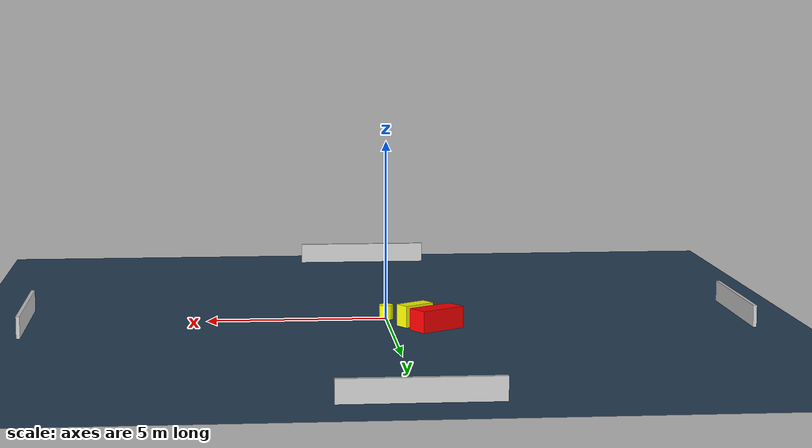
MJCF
<?xml version="1.0" ?>
<mujoco model="generated_environment">
  <option timestep="0.01" integrator="RK4" cone="elliptic"/>
  <default>
    <geom density="1"/>
  </default>
  <asset>
    <texture builtin="gradient" height="3072" name="skybox" rgb1="0.3 0.5 0.7" rgb2="0 0 0" type="skybox" width="512"/>
    <texture builtin="checker" height="300" name="groundplane" rgb1="0.2 0.3 0.4" rgb2="0.1 0.2 0.3" type="2d" width="300"/>
    <material name="groundplane" reflectance="0.2" texrepeat="5 5" texture="groundplane"/>
  </asset>
  <worldbody>
    <light dir="0 0 -1" directional="true" pos="0 0 1.5"/>
    <geom condim="3" friction="0.5 0.005 0.001" material="groundplane" name="floor" pos="0 0 0" size="0 0 0.05" type="plane"/>
    <body name="walls">
      <geom name="wall_1" condim="4" pos="-10.0 0.0 0.3" rgba="0.800000011920929 0.800000011920929 0.800000011920929 1.0" size="0.05 2.0 0.3" type="box"/>
      <geom name="wall_2" condim="4" pos="10.0 0.0 0.3" rgba="0.800000011920929 0.800000011920929 0.800000011920929 1.0" size="0.05 2.0 0.3" type="box"/>
      <geom name="wall_3" condim="4" pos="0.0 -10.0 0.3" rgba="0.800000011920929 0.800000011920929 0.800000011920929 1.0" size="2.0 0.05 0.3" type="box"/>
      <geom name="wall_4" condim="4" pos="0.0 10.0 0.3" rgba="0.800000011920929 0.800000011920929 0.800000011920929 1.0" size="2.0 0.05 0.3" type="box"/>
    </body>
    <body name="robot">
      <joint name="joint_x" type="slide" pos="0 0 0" axis="1 0 0"/>
      <joint name="joint_y" type="slide" pos="0 0 0" axis="0 1 0"/>
      <geom name="robot" type="cylinder" pos="0.0 0.0 0.2" size="0.2 0.2 0.0" mass="5.0" friction="1.0 0.005 0.0001" condim="4" rgba="1.0 1.0 0.0 1.0"/>
    </body>
    <body name="obstacle_1_movable">
      <geom name="obstacle_1_movable" condim="4" pos="-0.7233891359039561 0.9264135984057549 0.3" euler="0 0 213.51841206771272" friction="0.0 0.005 0.001" rgba="1.0 1.0 0.0 1.0" size="0.4731954843924629 0.21641268745960818 0.3" type="box" mass="0.1"/>
      <joint type="free"/>
    </body>
    <body name="obstacle_2_static">
      <geom name="obstacle_2_static" condim="4" pos="-1.2590291238010318 1.5494803366799446 0.3" euler="0 0 32.463279944751264" friction="0.0 0.005 0.001" rgba="1.0 0.0 0.0 1.0" size="0.6839297924904129 0.3071838450805006 0.3" type="box"/>
    </body>
  </worldbody>
  <actuator>
    <motor name="actuator_x" joint="joint_x" gear="1" ctrlrange="-1 1"/>
    <motor name="actuator_y" joint="joint_y" gear="1" ctrlrange="-1 1"/>
  </actuator>
</mujoco>
